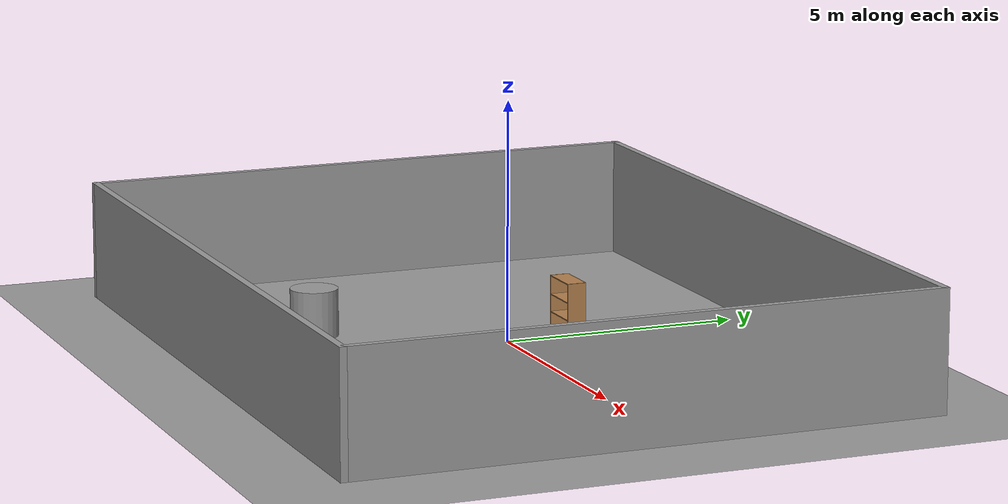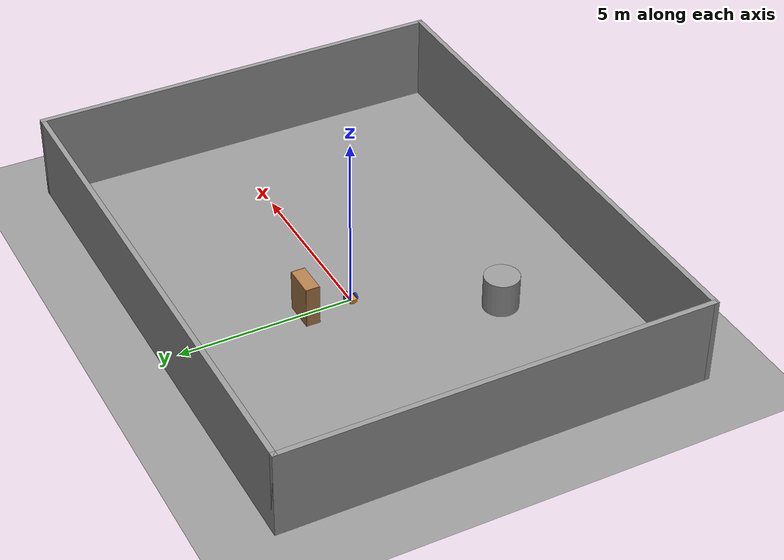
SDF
<sdf version="1.6">
 <world name="default">
  <light name="sun" type="directional">
   <pose>0 0 10 0 -0 0</pose>
   <diffuse>0.8 0.8 0.8 1</diffuse>
   <specular>0.2 0.2 0.2 1</specular>
   <attenuation>
    <range>1000</range>
    <constant>0.9</constant>
    <linear>0.01</linear>
    <quadratic>0.001</quadratic>
   </attenuation>
   <direction>0.5 0.1 -0.9</direction>
  </light>
  <scene><ambient>0.4 0.4 0.4 1</ambient><background>0.7 0.7 0.7 1</background><shadows>1</shadows></scene>
  <physics name="default_physics" default="0" type="ode">
   <max_step_size>0.01</max_step_size>
   <real_time_factor>1</real_time_factor>
   <real_time_update_rate>100</real_time_update_rate>
  </physics>
  <model name="bookshelf">
   <static>1</static>
   <link name="link">
    <inertial><mass>1</mass></inertial>
    <collision name="back">
     <pose>0 0.005 0.6 0 -0 0</pose>
     <geometry><box><size>0.9 0.01 1.2</size></box></geometry>
    </collision>
    <visual name="visual1">
     <pose>0 0.005 0.6 0 -0 0</pose>
     <geometry><box><size>0.9 0.01 1.2</size></box></geometry>
     <material>
      <script><uri>file://media/materials/scripts/gazebo.material</uri><name>Gazebo/Wood</name></script>
     </material>
    </visual>
    <collision name="left_side">
     <pose>0.45 -0.195 0.6 0 -0 0</pose>
     <geometry><box><size>0.02 0.4 1.2</size></box></geometry>
    </collision>
    <visual name="visual2">
     <pose>0.45 -0.195 0.6 0 -0 0</pose>
     <geometry><box><size>0.02 0.4 1.2</size></box></geometry>
     <material>
      <script><uri>file://media/materials/scripts/gazebo.material</uri><name>Gazebo/Wood</name></script>
     </material>
    </visual>
    <collision name="right_side">
     <pose>-0.45 -0.195 0.6 0 -0 0</pose>
     <geometry><box><size>0.02 0.4 1.2</size></box></geometry>
    </collision>
    <visual name="visual3">
     <pose>-0.45 -0.195 0.6 0 -0 0</pose>
     <geometry><box><size>0.02 0.4 1.2</size></box></geometry>
     <material>
      <script><uri>file://media/materials/scripts/gazebo.material</uri><name>Gazebo/Wood</name></script>
     </material>
    </visual>
    <collision name="bottom">
     <pose>0 -0.195 0.03 0 -0 0</pose>
     <geometry><box><size>0.88 0.4 0.06</size></box></geometry>
    </collision>
    <visual name="visual4">
     <pose>0 -0.195 0.03 0 -0 0</pose>
     <geometry><box><size>0.88 0.4 0.06</size></box></geometry>
     <material>
      <script><uri>file://media/materials/scripts/gazebo.material</uri><name>Gazebo/Wood</name></script>
     </material>
    </visual>
    <collision name="top">
     <pose>0 -0.195 1.19 0 -0 0</pose>
     <geometry><box><size>0.88 0.4 0.02</size></box></geometry>
    </collision>
    <visual name="visual5">
     <pose>0 -0.195 1.19 0 -0 0</pose>
     <geometry><box><size>0.88 0.4 0.02</size></box></geometry>
     <material>
      <script><uri>file://media/materials/scripts/gazebo.material</uri><name>Gazebo/Wood</name></script>
     </material>
    </visual>
    <collision name="low_shelf">
     <pose>0 -0.195 0.43 0 -0 0</pose>
     <geometry><box><size>0.88 0.4 0.02</size></box></geometry>
    </collision>
    <visual name="visual6">
     <pose>0 -0.195 0.43 0 -0 0</pose>
     <geometry><box><size>0.88 0.4 0.02</size></box></geometry>
     <material>
      <script><uri>file://media/materials/scripts/gazebo.material</uri><name>Gazebo/Wood</name></script>
     </material>
    </visual>
    <collision name="high_shelf">
     <pose>0 -0.195 0.8 0 -0 0</pose>
     <geometry><box><size>0.88 0.4 0.02</size></box></geometry>
    </collision>
    <visual name="visual7">
     <pose>0 -0.195 0.8 0 -0 0</pose>
     <geometry><box><size>0.88 0.4 0.02</size></box></geometry>
     <material>
      <script><uri>file://media/materials/scripts/gazebo.material</uri><name>Gazebo/Wood</name></script>
     </material>
    </visual>
    <velocity_decay><linear>0</linear><angular>0</angular></velocity_decay>
   </link>
   <pose>0 1.53026 0 0 -0 0</pose>
  </model>
  <model name="ground_plane_0">
   <static>1</static>
   <link name="link">
    <collision name="collision">
     <geometry><plane><normal>0 0 1</normal><size>100 100</size></plane></geometry>
     <surface><friction><ode><mu>100</mu><mu2>50</mu2></ode></friction></surface>
    </collision>
    <visual name="visual">
     <cast_shadows>0</cast_shadows>
     <geometry><plane><normal>0 0 1</normal><size>100 100</size></plane></geometry>
     <material>
      <script><uri>file://media/materials/scripts/gazebo.material</uri><name>Gazebo/Grey</name></script>
     </material>
    </visual>
    <velocity_decay><linear>0</linear><angular>0</angular></velocity_decay>
   </link>
   <pose>0.497681 0 0 0 -0 0</pose>
  </model>
  <model name="unit_cylinder_1">
   <pose>-2 -3.4888 0.49912 -0 -0 -0</pose>
   <link name="link">
    <inertial>
     <mass>1</mass>
     <inertia><ixx>1</ixx><ixy>0</ixy><ixz>0</ixz><iyy>1</iyy><iyz>0</iyz><izz>1</izz></inertia>
    </inertial>
    <collision name="collision">
     <geometry><cylinder><radius>0.5</radius><length>1</length></cylinder></geometry>
    </collision>
    <visual name="visual">
     <geometry><cylinder><radius>0.5</radius><length>1</length></cylinder></geometry>
     <material>
      <script><uri>file://media/materials/scripts/gazebo.material</uri><name>Gazebo/Grey</name></script>
     </material>
    </visual>
    <velocity_decay><linear>0</linear><angular>0</angular></velocity_decay>
   </link>
   <static>0</static>
  </model>
  <gravity>0 0 -9.8</gravity>
  <magnetic_field>6e-06 2.3e-05 -4.2e-05</magnetic_field>
  <atmosphere type="adiabatic"/>
  <audio><device>default</device></audio>
  <spherical_coordinates>
   <surface_model>EARTH_WGS84</surface_model>
   <latitude_deg>0</latitude_deg>
   <longitude_deg>0</longitude_deg>
   <elevation>0</elevation>
   <heading_deg>0</heading_deg>
  </spherical_coordinates>
  <model name="mybot">
   <link name="chassis">
    <inertial>
     <pose>0.001325 0 0.099338 0 -0 0</pose>
     <mass>15.1</mass>
     <inertia>
      <ixx>0.100995</ixx>
      <ixy>0</ixy>
      <ixz>0.00198675</ixz>
      <iyy>0.104969</iyy>
      <iyz>0</iyz>
      <izz>0.103976</izz>
     </inertia>
    </inertial>
    <collision name="chassis_fixed_joint_lump__collision_collision">
     <geometry><box><size>0.4 0.2 0.1</size></box></geometry>
    </collision>
    <collision name="chassis_fixed_joint_lump__caster_collision_collision_1">
     <pose>-0.15 0 -0.05 0 -0 0</pose>
     <geometry><sphere><radius>0.05</radius></sphere></geometry>
    </collision>
    <collision name="chassis_fixed_joint_lump__caster_front_collision_collision_2">
     <pose>0.15 0 -0.05 0 -0 0</pose>
     <geometry><sphere><radius>0.05</radius></sphere></geometry>
    </collision>
    <collision name="chassis_fixed_joint_lump__camera_collision_3">
     <pose>0.2 0 0 0 -0 0</pose>
     <geometry><box><size>0.05 0.05 0.05</size></box></geometry>
    </collision>
    <collision name="chassis_fixed_joint_lump__sensor_laser_collision_4">
     <pose>0.15 0 0.1 0 -0 0</pose>
     <geometry><box><size>0.1 0.1 0.1</size></box></geometry>
    </collision>
    <visual name="chassis_visual_visual">
     <geometry><box><size>0.4 0.2 0.1</size></box></geometry>
     <material>
      <script><name>Gazebo/Orange</name><uri>file://media/materials/scripts/gazebo.material</uri></script>
     </material>
    </visual>
    <visual name="chassis_fixed_joint_lump__caster_visual_visual_1">
     <pose>-0.15 0 -0.05 0 -0 0</pose>
     <geometry><sphere><radius>0.05</radius></sphere></geometry>
    </visual>
    <visual name="chassis_fixed_joint_lump__caster_front_visual_visual_2">
     <pose>0.15 0 -0.05 0 -0 0</pose>
     <geometry><sphere><radius>0.05</radius></sphere></geometry>
    </visual>
    <visual name="chassis_fixed_joint_lump__camera_visual_3">
     <pose>0.2 0 0 0 -0 0</pose>
     <geometry><box><size>0.05 0.05 0.05</size></box></geometry>
     <material>
      <script><name>Gazebo/Green</name><uri>file://media/materials/scripts/gazebo.material</uri></script>
     </material>
    </visual>
    <visual name="chassis_fixed_joint_lump__sensor_laser_visual_4">
     <pose>0.15 0 0.1 0 -0 0</pose>
     <geometry><cylinder><length>0.1</length><radius>0.05</radius></cylinder></geometry>
     <material><script><uri>__default__</uri><name>__default__</name></script></material>
    </visual>
    <sensor name="camera1" type="camera">
     <update_rate>30</update_rate>
     <camera name="head">
      <horizontal_fov>1.39626</horizontal_fov>
      <image><width>800</width><height>800</height><format>R8G8B8</format></image>
      <clip><near>0.02</near><far>300</far></clip>
     </camera>
     <plugin name="camera_controller" filename="libgazebo_ros_camera.so">
      <alwaysOn>1</alwaysOn>
      <updateRate>0.0</updateRate>
      <cameraName>mybot/camera1</cameraName>
      <imageTopicName>image_raw</imageTopicName>
      <cameraInfoTopicName>camera_info</cameraInfoTopicName>
      <frameName>camera</frameName>
      <hackBaseline>0.07</hackBaseline>
      <distortionK1>0.0</distortionK1>
      <distortionK2>0.0</distortionK2>
      <distortionK3>0.0</distortionK3>
      <distortionT1>0.0</distortionT1>
      <distortionT2>0.0</distortionT2>
      <robotNamespace>/</robotNamespace>
     </plugin>
     <pose>0.2 0 0 0 -0 0</pose>
    </sensor>
    <sensor name="head_hokuyo_sensor" type="ray">
     <visualize>1</visualize>
     <update_rate>40</update_rate>
     <ray>
      <scan>
       <horizontal>
        <samples>720</samples>
        <resolution>1</resolution>
        <min_angle>-1.5708</min_angle>
        <max_angle>1.5708</max_angle>
       </horizontal>
       <vertical><samples>1</samples><min_angle>0</min_angle><max_angle>0</max_angle></vertical>
      </scan>
      <range><min>0.1</min><max>10</max><resolution>0.01</resolution></range>
      <noise><type>gaussian</type><mean>0</mean><stddev>0.01</stddev></noise>
     </ray>
     <plugin name="gazebo_ros_head_hokuyo_controller" filename="libgazebo_ros_laser.so">
      <topicName>/mybot/laser/scan</topicName>
      <frameName>sensor_laser</frameName>
      <robotNamespace>/</robotNamespace>
     </plugin>
     <pose>0.15 0 0.1 0 -0 0</pose>
    </sensor>
   </link>
   <link name="left_wheel">
    <pose>0 0.15 0 0 -0 0</pose>
    <inertial>
     <pose>0 0 0 -0 1.5707 1.5707</pose>
     <mass>5</mass>
     <inertia><ixx>0.1</ixx><ixy>0</ixy><ixz>0</ixz><iyy>0.1</iyy><iyz>0</iyz><izz>0.1</izz></inertia>
    </inertial>
    <collision name="left_wheel_fixed_joint_lump__collision_collision">
     <pose>0 0 0 3.14159 1.57079 -1.57089</pose>
     <geometry><cylinder><length>0.05</length><radius>0.1</radius></cylinder></geometry>
    </collision>
    <visual name="left_wheel_visual_visual">
     <pose>0 0 0 3.14159 1.57079 -1.57089</pose>
     <geometry><cylinder><length>0.05</length><radius>0.1</radius></cylinder></geometry>
     <material>
      <script><name>Gazebo/Blue</name><uri>file://media/materials/scripts/gazebo.material</uri></script>
     </material>
    </visual>
   </link>
   <joint name="left_wheel_hinge" type="revolute">
    <child>left_wheel</child>
    <parent>chassis</parent>
    <axis>
     <xyz>0 1 0</xyz>
     <limit><lower>-1e+16</lower><upper>1e+16</upper></limit>
     <dynamics><spring_reference>0</spring_reference><spring_stiffness>0</spring_stiffness></dynamics>
     <use_parent_model_frame>1</use_parent_model_frame>
    </axis>
   </joint>
   <link name="right_wheel">
    <pose>0 -0.15 0 0 -0 0</pose>
    <inertial>
     <pose>0 0 0 -0 1.5707 1.5707</pose>
     <mass>5</mass>
     <inertia><ixx>0.1</ixx><ixy>0</ixy><ixz>0</ixz><iyy>0.1</iyy><iyz>0</iyz><izz>0.1</izz></inertia>
    </inertial>
    <collision name="right_wheel_fixed_joint_lump__collision_collision">
     <pose>0 0 0 3.14159 1.57079 -1.57089</pose>
     <geometry><cylinder><length>0.05</length><radius>0.1</radius></cylinder></geometry>
    </collision>
    <visual name="right_wheel_visual_visual">
     <pose>0 0 0 3.14159 1.57079 -1.57089</pose>
     <geometry><cylinder><length>0.05</length><radius>0.1</radius></cylinder></geometry>
     <material>
      <script><name>Gazebo/Blue</name><uri>file://media/materials/scripts/gazebo.material</uri></script>
     </material>
    </visual>
   </link>
   <joint name="right_wheel_hinge" type="revolute">
    <child>right_wheel</child>
    <parent>chassis</parent>
    <axis>
     <xyz>0 1 0</xyz>
     <limit><lower>-1e+16</lower><upper>1e+16</upper></limit>
     <dynamics><spring_reference>0</spring_reference><spring_stiffness>0</spring_stiffness></dynamics>
     <use_parent_model_frame>1</use_parent_model_frame>
    </axis>
   </joint>
   <plugin name="differential_drive_controller" filename="libgazebo_ros_diff_drive.so">
    <legacyMode>0</legacyMode>
    <publishWheelTF>0</publishWheelTF>
    <alwaysOn>1</alwaysOn>
    <updateRate>10</updateRate>
    <leftJoint>left_wheel_hinge</leftJoint>
    <rightJoint>right_wheel_hinge</rightJoint>
    <wheelSeparation>0.4</wheelSeparation>
    <wheelDiameter>0.2</wheelDiameter>
    <torque>10</torque>
    <commandTopic>cmd_vel</commandTopic>
    <odometryTopic>odom</odometryTopic>
    <odometryFrame>odom</odometryFrame>
    <robotBaseFrame>chassis</robotBaseFrame>
    <publishOdomTF>0</publishOdomTF>
    <robotNamespace>/</robotNamespace>
   </plugin>
   <plugin name="imu_controller" filename="libhector_gazebo_ros_imu.so">
    <robotNamespace>mybot</robotNamespace>
    <updateRate>50.0</updateRate>
    <topicName>imu/data</topicName>
    <accelDrift>0.005 0.005 0.005</accelDrift>
    <accelGaussianNoise>0.005 0.005 0.005</accelGaussianNoise>
    <rateDrift>0.005 0.005 0.005</rateDrift>
    <rateGaussianNoise>0.005 0.005 0.005</rateGaussianNoise>
    <headingDrift>0.005</headingDrift>
    <headingGaussianNoise>0.005</headingGaussianNoise>
    <bodyName>chassis</bodyName>
    <xyzOffset>-0.15 0 -0.05</xyzOffset>
    <rpyOffset>0 -0 0</rpyOffset>
   </plugin>
   <static>0</static>
   <plugin name="gps_controller" filename="libhector_gazebo_ros_gps.so">
    <robotNamespace>mybot</robotNamespace>
    <updateRate>40.0</updateRate>
    <frameId>chassis</frameId>
    <topicName>navsat/fix</topicName>
    <velocityTopicName>navsat/vel</velocityTopicName>
    <referenceLatitude>49.9</referenceLatitude>
    <referenceLongitude>8.9</referenceLongitude>
    <referenceHeading>0</referenceHeading>
    <referenceAltitude>0</referenceAltitude>
    <drift>0.0001 0.0001 0.0001</drift>
    <bodyName>chassis</bodyName>
    <xyzOffset>-0.15 0 -0.05</xyzOffset>
    <rpyOffset>0 -0 0</rpyOffset>
   </plugin>
   <pose>0.000433 0.002338 0.099994 -1.2e-05 5.4e-05 -0.002677</pose>
  </model>
  <model name="wall5">
   <pose>0.731972 -0.588415 0 0 -0 0</pose>
   <link name="Wall_2">
    <collision name="Wall_2_Collision">
     <geometry><box><size>12.25 0.15 2.5</size></box></geometry>
     <pose>0 0 1.25 0 -0 0</pose>
    </collision>
    <visual name="Wall_2_Visual">
     <pose>0 0 1.25 0 -0 0</pose>
     <geometry><box><size>12.25 0.15 2.5</size></box></geometry>
     <material>
      <script><uri>file://media/materials/scripts/gazebo.material</uri><name>Gazebo/Grey</name></script>
      <ambient>1 1 1 1</ambient>
     </material>
     <meta><layer>0</layer></meta>
    </visual>
    <pose>-7.675 0 0 0 -0 1.5708</pose>
   </link>
   <link name="Wall_3">
    <collision name="Wall_3_Collision">
     <geometry><box><size>15.5 0.15 2.5</size></box></geometry>
     <pose>0 0 1.25 0 -0 0</pose>
    </collision>
    <visual name="Wall_3_Visual">
     <pose>0 0 1.25 0 -0 0</pose>
     <geometry><box><size>15.5 0.15 2.5</size></box></geometry>
     <material>
      <script><uri>file://media/materials/scripts/gazebo.material</uri><name>Gazebo/Grey</name></script>
      <ambient>1 1 1 1</ambient>
     </material>
     <meta><layer>0</layer></meta>
    </visual>
    <pose>0 6.05 0 0 -0 0</pose>
   </link>
   <link name="Wall_4">
    <collision name="Wall_4_Collision">
     <geometry><box><size>12.25 0.15 2.5</size></box></geometry>
     <pose>0 0 1.25 0 -0 0</pose>
    </collision>
    <visual name="Wall_4_Visual">
     <pose>0 0 1.25 0 -0 0</pose>
     <geometry><box><size>12.25 0.15 2.5</size></box></geometry>
     <material>
      <script><uri>file://media/materials/scripts/gazebo.material</uri><name>Gazebo/Grey</name></script>
      <ambient>1 1 1 1</ambient>
     </material>
     <meta><layer>0</layer></meta>
    </visual>
    <pose>7.675 0 0 0 -0 -1.5708</pose>
   </link>
   <link name="Wall_5">
    <collision name="Wall_5_Collision">
     <geometry><box><size>15.5 0.15 2.5</size></box></geometry>
     <pose>0 0 1.25 0 -0 0</pose>
    </collision>
    <visual name="Wall_5_Visual">
     <pose>0 0 1.25 0 -0 0</pose>
     <geometry><box><size>15.5 0.15 2.5</size></box></geometry>
     <material>
      <script><uri>file://media/materials/scripts/gazebo.material</uri><name>Gazebo/Grey</name></script>
      <ambient>1 1 1 1</ambient>
     </material>
     <meta><layer>0</layer></meta>
    </visual>
    <pose>0 -6.05 0 0 -0 3.14159</pose>
   </link>
   <static>1</static>
  </model>
 </world>
</sdf>
